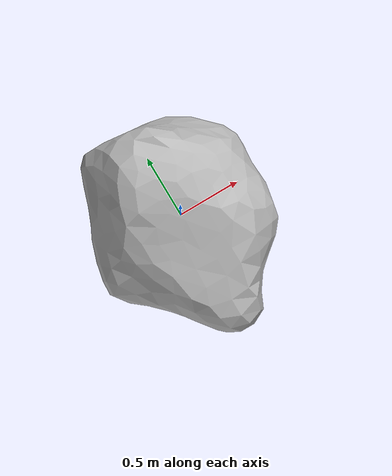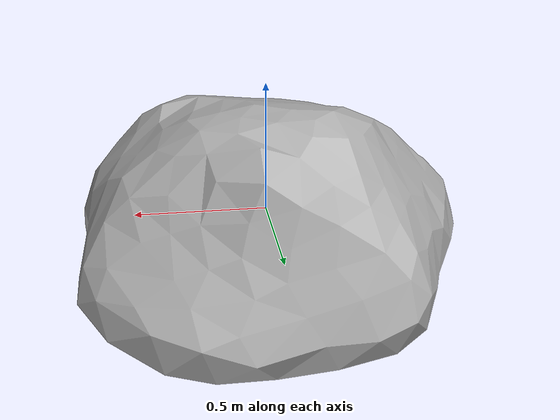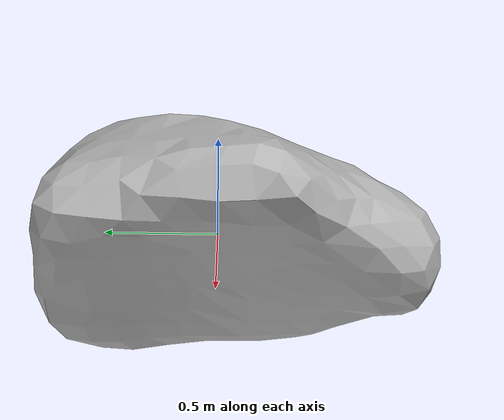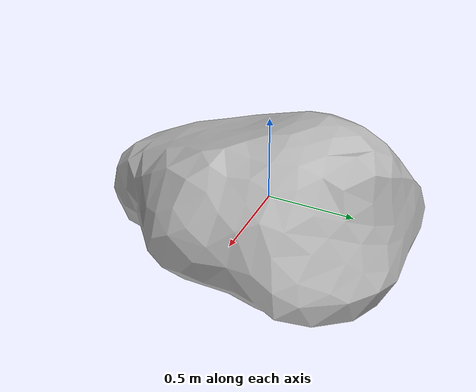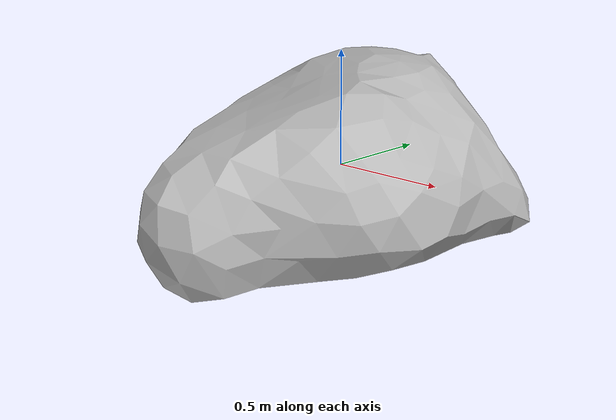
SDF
<?xml version="1.0"?>
<sdf version="1.4">
    <model name="subsea_rock_3">
        <pose>0 0 0 0 0 0</pose>
        <static>true</static>
        <link name="subsea_rock_3_body">
            <visual name="visual">
                <geometry>
                    <mesh>
                        <uri>model://subsea_rock_3/visual.osgb</uri>
                    </mesh>
                </geometry>
            </visual>
            <collision name="collision">
                <geometry>
                    <mesh>
                        <uri>model://subsea_rock_3/collision.stl</uri>
                    </mesh>
                </geometry>
            </collision>
            <inertial>
                <pose>0 0 -1 0 0 0</pose>
                <inertia>
                    <ixx>0.0</ixx>
                    <ixy>0</ixy>
                    <ixz>0.0</ixz>
                    <iyy>0.0</iyy>
                    <iyz>0</iyz>
                    <izz>0.0</izz>
                </inertia>
                <mass>1.0</mass>
            </inertial>
        </link>
    </model>
</sdf>
